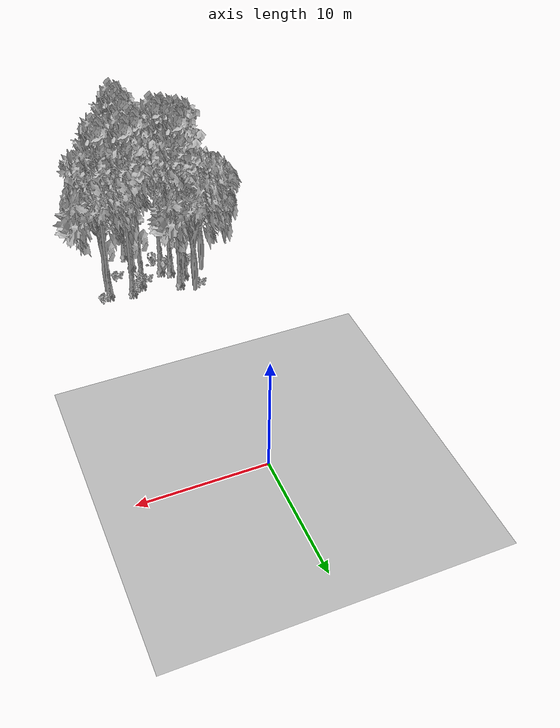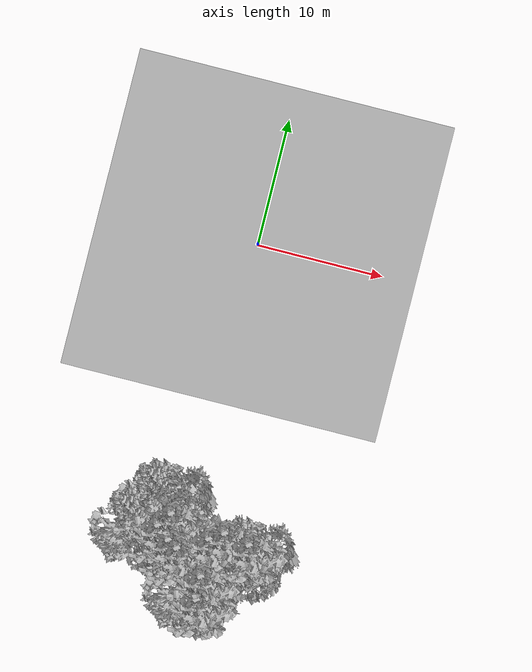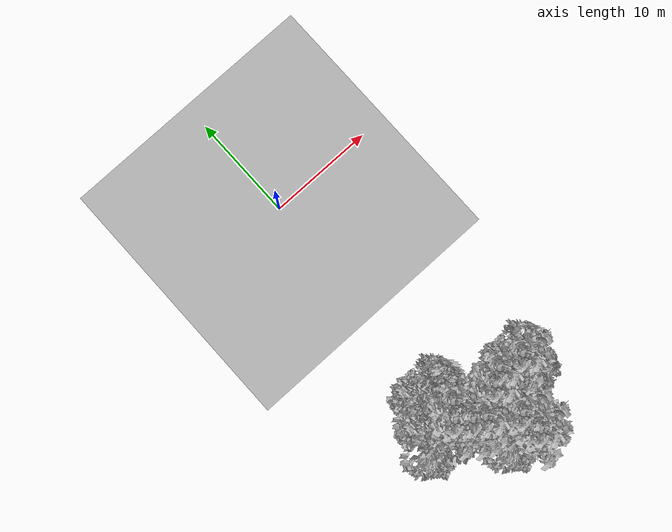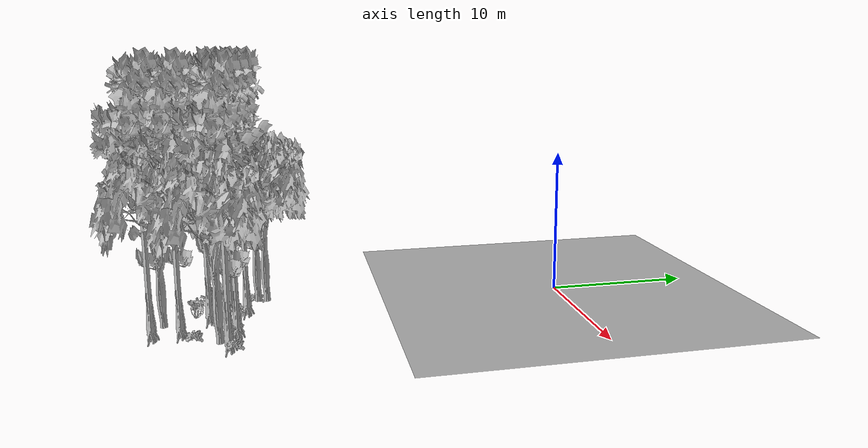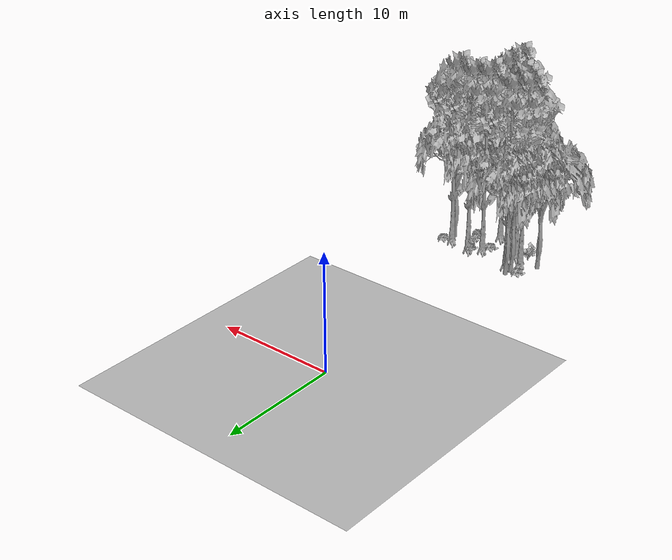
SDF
<sdf version="1.7">
 <world name="default">
  <model name="ground_plane">
   <static>1</static>
   <link name="link">
    <collision name="collision">
     <pose>-50 0 0 0 -0 0</pose>
     <geometry><plane><normal>0 0 1</normal><size>80 80</size></plane></geometry>
     <surface><contact><ode><min_depth>0.01</min_depth><max_vel>0</max_vel></ode></contact></surface>
    </collision>
    <visual name="grass">
     <cast_shadows>0</cast_shadows>
     <geometry>
      <mesh>
       <scale>0.46714285714285714 0.46714285714285714 0.1</scale>
       <uri>file://grass_plane/meshes/grass_plane.dae</uri>
      </mesh>
     </geometry>
    </visual>
   </link>
  </model>
  <model name="Tree 5">
   <static>1</static>
   <pose>-1.8581953231498218 -20.53048625589616 0 1.57079 -0 0</pose>
   <link name="link">
    <collision name="collision">
     <geometry><mesh><scale>3.5 5 3.5</scale><uri>model://tree_2/meshes/tree_2.obj</uri></mesh></geometry>
    </collision>
    <visual name="visual">
     <geometry><mesh><scale>3.5 5 3.5</scale><uri>model://tree_2/meshes/tree_2.obj</uri></mesh></geometry>
    </visual>
   </link>
  </model>
  <model name="Tree 50">
   <static>1</static>
   <pose>-1.6055954603831921 -22.902756172258243 0 1.57079 -0 0</pose>
   <link name="link">
    <collision name="collision">
     <geometry><mesh><scale>3.5 5 3.5</scale><uri>model://tree_9/meshes/tree_9.obj</uri></mesh></geometry>
    </collision>
    <visual name="visual">
     <geometry><mesh><scale>3.5 5 3.5</scale><uri>model://tree_9/meshes/tree_9.obj</uri></mesh></geometry>
    </visual>
   </link>
  </model>
  <model name="Tree 65">
   <static>1</static>
   <pose>1.790889876112999 -26.881300033360844 0 1.57079 -0 0</pose>
   <link name="link">
    <collision name="collision">
     <geometry><mesh><scale>3.5 5 3.5</scale><uri>model://tree_2/meshes/tree_2.obj</uri></mesh></geometry>
    </collision>
    <visual name="visual">
     <geometry><mesh><scale>3.5 5 3.5</scale><uri>model://tree_2/meshes/tree_2.obj</uri></mesh></geometry>
    </visual>
   </link>
  </model>
  <model name="Tree 89">
   <static>1</static>
   <pose>3.313044088958179 -22.285441078204666 0 1.57079 -0 0</pose>
   <link name="link">
    <collision name="collision">
     <geometry><mesh><scale>3.5 5 3.5</scale><uri>model://tree_9/meshes/tree_9.obj</uri></mesh></geometry>
    </collision>
    <visual name="visual">
     <geometry><mesh><scale>3.5 5 3.5</scale><uri>model://tree_9/meshes/tree_9.obj</uri></mesh></geometry>
    </visual>
   </link>
  </model>
  <model name="Tree 118">
   <static>1</static>
   <pose>2.5186948183676066 -27.514985133453695 0 1.57079 -0 0</pose>
   <link name="link">
    <collision name="collision">
     <geometry><mesh><scale>3.5 5 3.5</scale><uri>model://tree_9/meshes/tree_9.obj</uri></mesh></geometry>
    </collision>
    <visual name="visual">
     <geometry><mesh><scale>3.5 5 3.5</scale><uri>model://tree_9/meshes/tree_9.obj</uri></mesh></geometry>
    </visual>
   </link>
  </model>
  <model name="Tree 123">
   <static>1</static>
   <pose>-0.6046806980727624 -23.745406051458602 0 1.57079 -0 0</pose>
   <link name="link">
    <collision name="collision">
     <geometry><mesh><scale>3.5 5 3.5</scale><uri>model://tree_9/meshes/tree_9.obj</uri></mesh></geometry>
    </collision>
    <visual name="visual">
     <geometry><mesh><scale>3.5 5 3.5</scale><uri>model://tree_9/meshes/tree_9.obj</uri></mesh></geometry>
    </visual>
   </link>
  </model>
  <model name="Tree 146">
   <static>1</static>
   <pose>-0.8498718609228106 -21.830191052374126 0 1.57079 -0 0</pose>
   <link name="link">
    <collision name="collision">
     <geometry><mesh><scale>3.5 5 3.5</scale><uri>model://tree_9/meshes/tree_9.obj</uri></mesh></geometry>
    </collision>
    <visual name="visual">
     <geometry><mesh><scale>3.5 5 3.5</scale><uri>model://tree_9/meshes/tree_9.obj</uri></mesh></geometry>
    </visual>
   </link>
  </model>
  <model name="Tree 220">
   <static>1</static>
   <pose>2.2945919018931917 -22.954454036361014 0 1.57079 -0 0</pose>
   <link name="link">
    <collision name="collision">
     <geometry><mesh><scale>3.5 5 3.5</scale><uri>model://tree_9/meshes/tree_9.obj</uri></mesh></geometry>
    </collision>
    <visual name="visual">
     <geometry><mesh><scale>3.5 5 3.5</scale><uri>model://tree_9/meshes/tree_9.obj</uri></mesh></geometry>
    </visual>
   </link>
  </model>
  <model name="Tree 271">
   <static>1</static>
   <pose>-3.3247600630773917 -23.039608087063428 0 1.57079 -0 0</pose>
   <link name="link">
    <collision name="collision">
     <geometry><mesh><scale>3.5 5 3.5</scale><uri>model://tree_2/meshes/tree_2.obj</uri></mesh></geometry>
    </collision>
    <visual name="visual">
     <geometry><mesh><scale>3.5 5 3.5</scale><uri>model://tree_2/meshes/tree_2.obj</uri></mesh></geometry>
    </visual>
   </link>
  </model>
  <model name="Tree 433">
   <static>1</static>
   <pose>-1.9931757377826926 -21.112597687329657 0 1.57079 -0 0</pose>
   <link name="link">
    <collision name="collision">
     <geometry><mesh><scale>3.5 5 3.5</scale><uri>model://tree_2/meshes/tree_2.obj</uri></mesh></geometry>
    </collision>
    <visual name="visual">
     <geometry><mesh><scale>3.5 5 3.5</scale><uri>model://tree_2/meshes/tree_2.obj</uri></mesh></geometry>
    </visual>
   </link>
  </model>
  <model name="Tree 452">
   <static>1</static>
   <pose>5.257310823865865 -23.222866693434383 0 1.57079 -0 0</pose>
   <link name="link">
    <collision name="collision">
     <geometry><mesh><scale>3.5 5 3.5</scale><uri>model://tree_2/meshes/tree_2.obj</uri></mesh></geometry>
    </collision>
    <visual name="visual">
     <geometry><mesh><scale>3.5 5 3.5</scale><uri>model://tree_2/meshes/tree_2.obj</uri></mesh></geometry>
    </visual>
   </link>
  </model>
  <model name="Tree 568">
   <static>1</static>
   <pose>5.26406266578816 -22.673587098187138 0 1.57079 -0 0</pose>
   <link name="link">
    <collision name="collision">
     <geometry><mesh><scale>3.5 5 3.5</scale><uri>model://tree_9/meshes/tree_9.obj</uri></mesh></geometry>
    </collision>
    <visual name="visual">
     <geometry><mesh><scale>3.5 5 3.5</scale><uri>model://tree_9/meshes/tree_9.obj</uri></mesh></geometry>
    </visual>
   </link>
  </model>
  <model name="Tree 622">
   <static>1</static>
   <pose>2.3792746377349445 -25.791474881896157 0 1.57079 -0 0</pose>
   <link name="link">
    <collision name="collision">
     <geometry><mesh><scale>3.5 5 3.5</scale><uri>model://tree_9/meshes/tree_9.obj</uri></mesh></geometry>
    </collision>
    <visual name="visual">
     <geometry><mesh><scale>3.5 5 3.5</scale><uri>model://tree_9/meshes/tree_9.obj</uri></mesh></geometry>
    </visual>
   </link>
  </model>
  <model name="Tree 624">
   <static>1</static>
   <pose>0.16245456626795374 -24.19074565985853 0 1.57079 -0 0</pose>
   <link name="link">
    <collision name="collision">
     <geometry><mesh><scale>3.5 5 3.5</scale><uri>model://tree_9/meshes/tree_9.obj</uri></mesh></geometry>
    </collision>
    <visual name="visual">
     <geometry><mesh><scale>3.5 5 3.5</scale><uri>model://tree_9/meshes/tree_9.obj</uri></mesh></geometry>
    </visual>
   </link>
  </model>
  <model name="Bush 71">
   <static>1</static>
   <pose>-0.17930961147374092 -24.013336794571146 0 1.57079 -0 0</pose>
   <link name="link">
    <collision name="collision">
     <geometry><mesh><scale>2 2 2</scale><uri>model://bush_0/meshes/bush_0.obj</uri></mesh></geometry>
     <surface><contact><collide_without_contact>false</collide_without_contact></contact></surface>
    </collision>
    <visual name="visual">
     <geometry><mesh><scale>2 2 2</scale><uri>model://bush_0/meshes/bush_0.obj</uri></mesh></geometry>
    </visual>
   </link>
  </model>
  <model name="Bush 218">
   <static>1</static>
   <pose>-2.4811053878212874 -21.263826285201198 0 1.57079 -0 0</pose>
   <link name="link">
    <collision name="collision">
     <geometry><mesh><scale>2 2 2</scale><uri>model://bush_2/meshes/bush_2.obj</uri></mesh></geometry>
     <surface><contact><collide_without_contact>false</collide_without_contact></contact></surface>
    </collision>
    <visual name="visual">
     <geometry><mesh><scale>2 2 2</scale><uri>model://bush_2/meshes/bush_2.obj</uri></mesh></geometry>
    </visual>
   </link>
  </model>
  <model name="Bush 219">
   <static>1</static>
   <pose>-1.9053836500331585 -23.618432650586314 0 1.57079 -0 0</pose>
   <link name="link">
    <collision name="collision">
     <geometry><mesh><scale>2 2 2</scale><uri>model://bush_0/meshes/bush_0.obj</uri></mesh></geometry>
     <surface><contact><collide_without_contact>false</collide_without_contact></contact></surface>
    </collision>
    <visual name="visual">
     <geometry><mesh><scale>2 2 2</scale><uri>model://bush_0/meshes/bush_0.obj</uri></mesh></geometry>
    </visual>
   </link>
  </model>
  <model name="Bush 293">
   <static>1</static>
   <pose>0.5916088764498966 -25.006732300525776 0 1.57079 -0 0</pose>
   <link name="link">
    <collision name="collision">
     <geometry><mesh><scale>2 2 2</scale><uri>model://bush_4/meshes/bush_4.obj</uri></mesh></geometry>
     <surface><contact><collide_without_contact>false</collide_without_contact></contact></surface>
    </collision>
    <visual name="visual">
     <geometry><mesh><scale>2 2 2</scale><uri>model://bush_4/meshes/bush_4.obj</uri></mesh></geometry>
    </visual>
   </link>
  </model>
  <model name="Bush 314">
   <static>1</static>
   <pose>3.9518111382162218 -24.835962907950115 0 1.57079 -0 0</pose>
   <link name="link">
    <collision name="collision">
     <geometry><mesh><scale>2 2 2</scale><uri>model://bush_2/meshes/bush_2.obj</uri></mesh></geometry>
     <surface><contact><collide_without_contact>false</collide_without_contact></contact></surface>
    </collision>
    <visual name="visual">
     <geometry><mesh><scale>2 2 2</scale><uri>model://bush_2/meshes/bush_2.obj</uri></mesh></geometry>
    </visual>
   </link>
  </model>
  <model name="Bush 368">
   <static>1</static>
   <pose>5.796386145939913 -22.31738631204803 0 1.57079 -0 0</pose>
   <link name="link">
    <collision name="collision">
     <geometry><mesh><scale>2 2 2</scale><uri>model://bush_2/meshes/bush_2.obj</uri></mesh></geometry>
     <surface><contact><collide_without_contact>false</collide_without_contact></contact></surface>
    </collision>
    <visual name="visual">
     <geometry><mesh><scale>2 2 2</scale><uri>model://bush_2/meshes/bush_2.obj</uri></mesh></geometry>
    </visual>
   </link>
  </model>
  <model name="Bush 374">
   <static>1</static>
   <pose>1.6922013698192515 -23.440750998238535 0 1.57079 -0 0</pose>
   <link name="link">
    <collision name="collision">
     <geometry><mesh><scale>2 2 2</scale><uri>model://bush_2/meshes/bush_2.obj</uri></mesh></geometry>
     <surface><contact><collide_without_contact>false</collide_without_contact></contact></surface>
    </collision>
    <visual name="visual">
     <geometry><mesh><scale>2 2 2</scale><uri>model://bush_2/meshes/bush_2.obj</uri></mesh></geometry>
    </visual>
   </link>
  </model>
  <model name="Bush 576">
   <static>1</static>
   <pose>2.6982476894542415 -22.204201120528406 0 1.57079 -0 0</pose>
   <link name="link">
    <collision name="collision">
     <geometry><mesh><scale>2 2 2</scale><uri>model://bush_5/meshes/bush_5.obj</uri></mesh></geometry>
     <surface><contact><collide_without_contact>false</collide_without_contact></contact></surface>
    </collision>
    <visual name="visual">
     <geometry><mesh><scale>2 2 2</scale><uri>model://bush_5/meshes/bush_5.obj</uri></mesh></geometry>
    </visual>
   </link>
  </model>
  <model name="Bush 577">
   <static>1</static>
   <pose>3.045526111691167 -22.41336159946379 0 1.57079 -0 0</pose>
   <link name="link">
    <collision name="collision">
     <geometry><mesh><scale>2 2 2</scale><uri>model://bush_2/meshes/bush_2.obj</uri></mesh></geometry>
     <surface><contact><collide_without_contact>false</collide_without_contact></contact></surface>
    </collision>
    <visual name="visual">
     <geometry><mesh><scale>2 2 2</scale><uri>model://bush_2/meshes/bush_2.obj</uri></mesh></geometry>
    </visual>
   </link>
  </model>
 </world>
</sdf>
